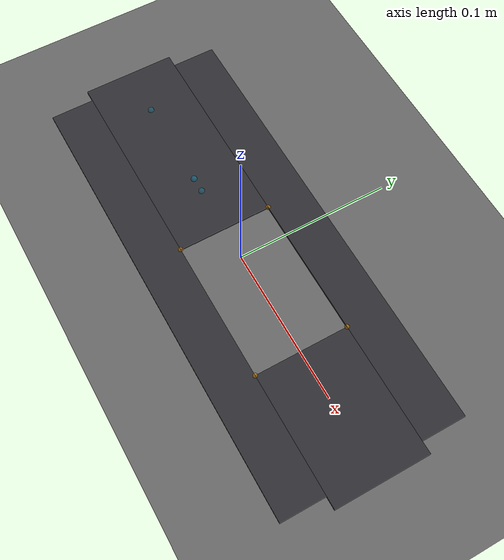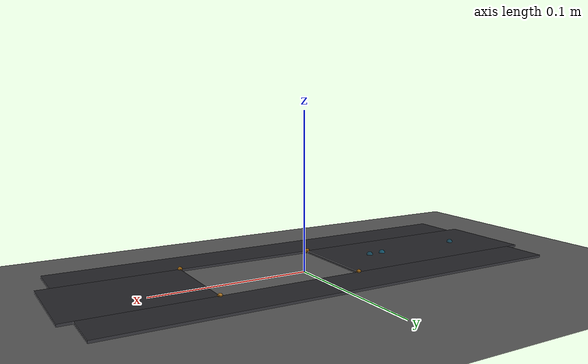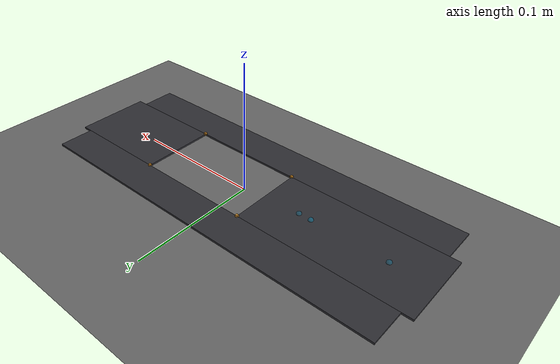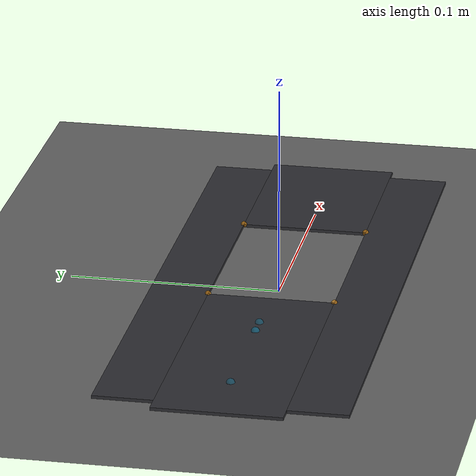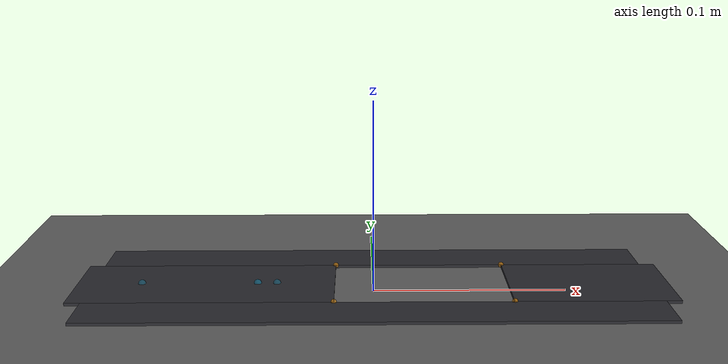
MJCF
<mujoco model="keyboard_epdm_foam">

  <compiler angle="radian" autolimits="true"/>

  <option gravity="0 0 -9.81" timestep="0.002"/>

  <asset>
    <material name="epdm_foam"
              rgba="0.18 0.18 0.20 1"
              specular="0.05"
              shininess="0.1"
              reflectance="0.02"/>
  </asset>

  <worldbody>

    <geom name="ground" type="plane" size="1 1 0.1"
          pos="0 0 0"
          friction="0.8 0.005 0.0001"
          rgba="0.4 0.4 0.4 1"/>

    <body name="epdm_foam" pos="0 0 0.00375">

      <inertial pos="0 0 0"
                mass="0.008"
                diaginertia="1.2e-5 3.8e-5 5.0e-5"/>

      <freejoint name="epdm_foam_free"/>

      <geom name="foam_front_strip"
            type="box"
            size="0.1454 0.01408 0.00075"
            pos="0 -0.04408 0"
            material="epdm_foam"
            density="200"
            friction="0.8 0.005 0.0001"
            condim="4"
            priority="1"/>

      <!-- ── REAR STRIP ───────────────────────────────────────────────
           Y range: +0.030 to +0.05815
           Symmetric to front strip
      -->
      <geom name="foam_rear_strip"
            type="box"
            size="0.1454 0.01408 0.00075"
            pos="0 0.04408 0"
            material="epdm_foam"
            density="200"
            friction="0.8 0.005 0.0001"
            condim="4"
            priority="1"/>

      <geom name="foam_left_slab"
            type="box"
            size="0.06670 0.030 0.00075"
            pos="-0.08670 0 0"
            material="epdm_foam"
            density="200"
            friction="0.8 0.005 0.0001"
            condim="4"
            priority="1"/>

      <geom name="foam_right_slab"
            type="box"
            size="0.04170 0.030 0.00075"
            pos="0.11170 0 0"
            material="epdm_foam"
            density="200"
            friction="0.8 0.005 0.0001"
            condim="4"
            priority="1"/>

      <!-- ══════════════════════════════════════════════════════════════
           REGISTRATION SITES
           ══════════════════════════════════════════════════════════════ -->

      <!-- Foam center ref — on solid foam left of battery cutout -->
      <site name="foam_center"
            type="sphere" size="0.002"
            pos="-0.06 0 0.00075"
            rgba="0 0.6 0.8 0.4"/>

      <!-- Battery cutout corners -->
      <site name="battery_cutout_FL"
            type="sphere" size="0.0015"
            pos="-0.020 -0.030 0.00075"
            rgba="1 0.6 0 0.5"/>
      <site name="battery_cutout_FR"
            type="sphere" size="0.0015"
            pos="0.070 -0.030 0.00075"
            rgba="1 0.6 0 0.5"/>
      <site name="battery_cutout_RL"
            type="sphere" size="0.0015"
            pos="-0.020 0.030 0.00075"
            rgba="1 0.6 0 0.5"/>
      <site name="battery_cutout_RR"
            type="sphere" size="0.0015"
            pos="0.070 0.030 0.00075"
            rgba="1 0.6 0 0.5"/>

      <!-- Vacuum grasp points — both on LEFT solid slab -->
      <site name="vacuum_grasp_left"
            type="sphere" size="0.002"
            pos="-0.12 0 0.00075"
            rgba="0 0.6 0.8 0.3"/>
      <site name="vacuum_grasp_right"
            type="sphere" size="0.002"
            pos="-0.05 0 0.00075"
            rgba="0 0.6 0.8 0.3"/>

    </body>

  </worldbody>

</mujoco>
